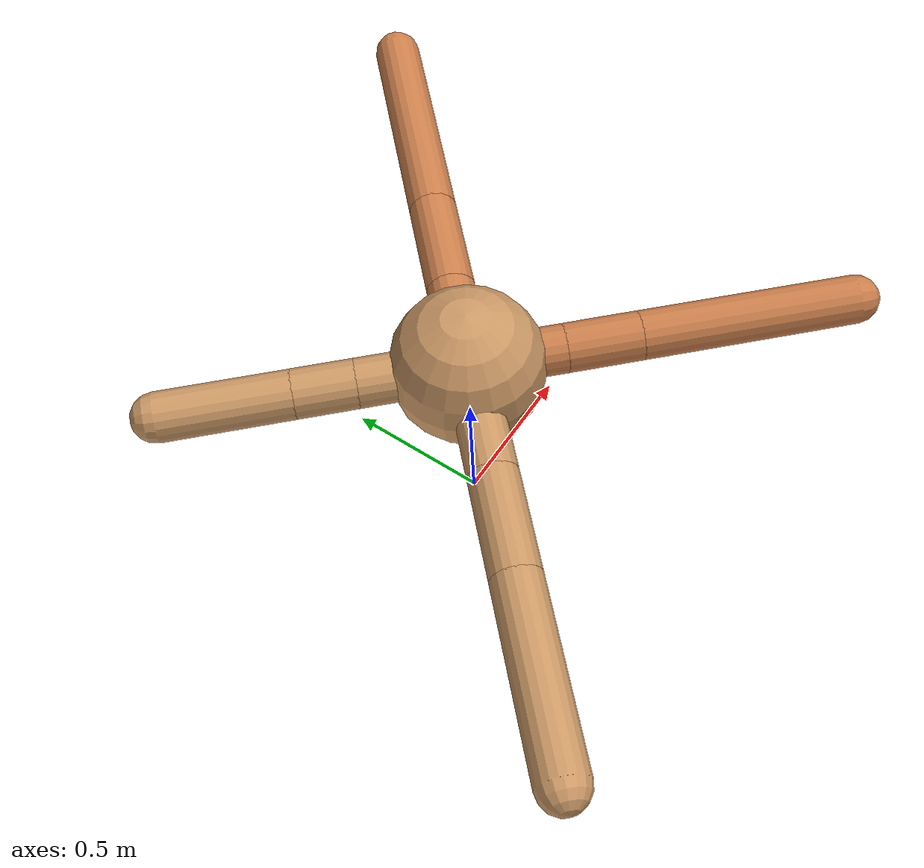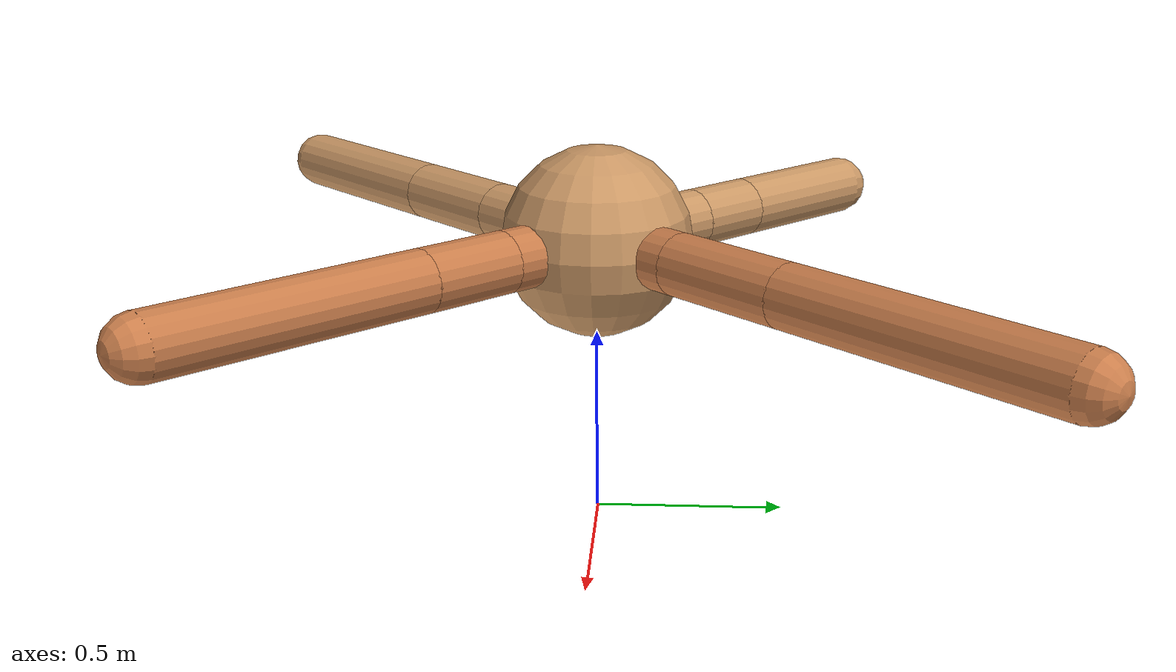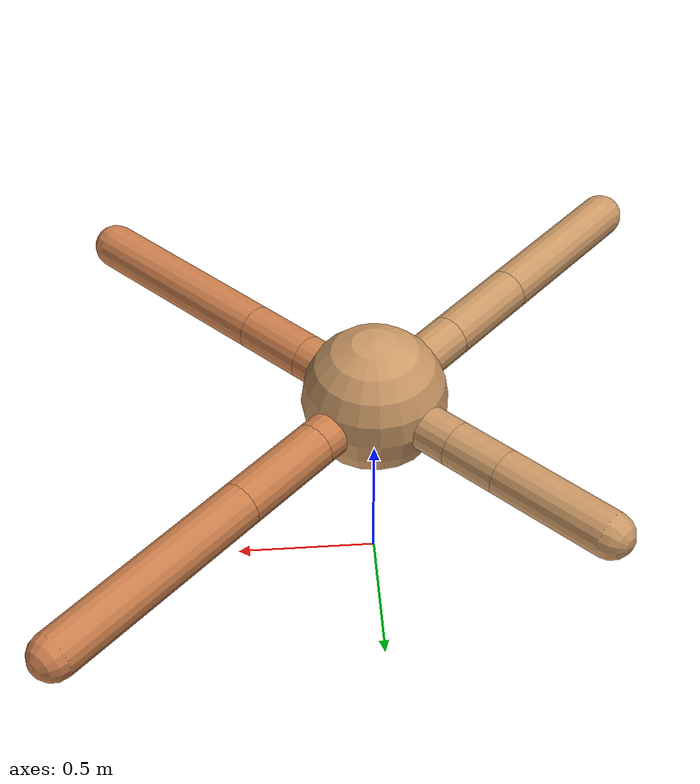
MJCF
<mujoco model="ant">
  <compiler angle="degree" coordinate="local" inertiafromgeom="true" />
  <option integrator="RK4" timestep="0.01" />
  <custom>
    <numeric data="0.0 0.0 0.55 1.0 0.0 0.0 0.0 0.0 1.0 0.0 -1.0 0.0 -1.0 0.0 1.0" name="init_qpos" />
  </custom>
  <default>
    <joint armature="1" damping="1" limited="true" />
    <geom conaffinity="0" condim="3" density="5.0" friction="1.5 0.1 0.1" margin="0.01" rgba="0.8 0.6 0.4 1" />
  </default>
  <worldbody>
    <body name="torso" pos="0 0 0.75">
      <geom name="torso_geom" pos="0 0 0" size="0.25" type="sphere" />

      <body name="front_left_leg" pos="0 0 0">
        <geom fromto="0.0 0.0 0.0 0.21511293316208835 0.21511293316208835 0.0" name="aux_1_geom" size="0.08" type="capsule" rgba=".8 .5 .3 1" />
        <body name="aux_1" pos="0.21511293316208835 0.21511293316208835 0.0">
          <joint axis="0 0 1" name="hip_1" pos="0.0 0.0 0.0" range="-40 40" type="hinge" />
          <geom fromto="0.0 0.0 0.0 0.24697506634563765 0.24697506634563765 0.0" name="left_leg_geom" size="0.08" type="capsule" rgba=".8 .5 .3 1" />
          <body pos="0.24697506634563765 0.24697506634563765 0.0" name="front_left_foot">
            <joint axis="-1 1 0" name="ankle_1" pos="0.0 0.0 0.0" range="30 100" type="hinge" />
            <geom fromto="0.0 0.0 0.0 0.5537741012371659 0.5537741012371659 0.0" name="left_ankle_geom" size="0.08" type="capsule" rgba=".8 .5 .3 1" />
          </body>
        </body>
      </body>
      <body name="front_right_leg" pos="0 0 0">
        <geom fromto="0.0 0.0 0.0 -0.24712444820036314 0.24712444820036314 0.0" name="aux_2_geom" size="0.08" type="capsule" />
        <body name="aux_2" pos="-0.24712444820036314 0.24712444820036314 0.0">
          <joint axis="0 0 1" name="hip_2" pos="0.0 0.0 0.0" range="-40 40" type="hinge" />
          <geom fromto="0.0 0.0 0.0 -0.13847660228017877 0.13847660228017877 0.0" name="right_leg_geom" size="0.08" type="capsule" />
          <body pos="-0.13847660228017877 0.13847660228017877 0.0" name="front_right_foot">
            <joint axis="1 1 0" name="ankle_2" pos="0.0 0.0 0.0" range="-100 -30" type="hinge" />
            <geom fromto="0.0 0.0 0.0 -0.29386936519088674 0.29386936519088674 0.0" name="right_ankle_geom" size="0.08" type="capsule" />
          </body>
        </body>
      </body>
      <body name="left_back_leg" pos="0 0 0">
        <geom fromto="0.0 0.0 0.0 -0.28606493655803894 -0.28606493655803894 0.0" name="aux_3_geom" size="0.08" type="capsule" />
        <body name="aux_3" pos="-0.28606493655803894 -0.28606493655803894 0.0">
          <joint axis="0 0 1" name="hip_3" pos="0.0 0.0 0.0" range="-40 40" type="hinge" />
          <geom fromto="0.0 0.0 0.0 -0.23919749383749986 -0.23919749383749986 0.0" name="back_leg_geom" size="0.08" type="capsule" />
          <body pos="-0.23919749383749986 -0.23919749383749986 0.0" name="left_back_foot">
            <joint axis="-1 1 0" name="ankle_3" pos="0.0 0.0 0.0" range="-100 -30" type="hinge" />
            <geom fromto="0.0 0.0 0.0 -0.4193753851598597 -0.4193753851598597 0.0" name="third_ankle_geom" size="0.08" type="capsule" />
          </body>
        </body>
      </body>
      <body name="right_back_leg" pos="0 0 0">
        <geom fromto="0.0 0.0 0.0 0.21820182671316554 -0.21820182671316554 0.0" name="aux_4_geom" size="0.08" type="capsule" rgba=".8 .5 .3 1" />
        <body name="aux_4" pos="0.21820182671316554 -0.21820182671316554 0.0">
          <joint axis="0 0 1" name="hip_4" pos="0.0 0.0 0.0" range="-40 40" type="hinge" />
          <geom fromto="0.0 0.0 0.0 0.17241316482976168 -0.17241316482976168 0.0" name="rightback_leg_geom" size="0.08" type="capsule" rgba=".8 .5 .3 1" />
          <body pos="0.17241316482976168 -0.17241316482976168 0.0" name="right_back_foot">
            <joint axis="1 1 0" name="ankle_4" pos="0.0 0.0 0.0" range="30 100" type="hinge" />
            <geom fromto="0.0 0.0 0.0 0.506460939984063 -0.506460939984063 0.0" name="fourth_ankle_geom" size="0.08" type="capsule" rgba=".8 .5 .3 1" />
          </body>
        </body>
      </body>
    </body>
  </worldbody>
  <actuator>
    <motor ctrllimited="true" ctrlrange="-1.0 1.0" joint="hip_4" gear="150" />
    <motor ctrllimited="true" ctrlrange="-1.0 1.0" joint="ankle_4" gear="150" />
    <motor ctrllimited="true" ctrlrange="-1.0 1.0" joint="hip_1" gear="150" />
    <motor ctrllimited="true" ctrlrange="-1.0 1.0" joint="ankle_1" gear="150" />
    <motor ctrllimited="true" ctrlrange="-1.0 1.0" joint="hip_2" gear="150" />
    <motor ctrllimited="true" ctrlrange="-1.0 1.0" joint="ankle_2" gear="150" />
    <motor ctrllimited="true" ctrlrange="-1.0 1.0" joint="hip_3" gear="150" />
    <motor ctrllimited="true" ctrlrange="-1.0 1.0" joint="ankle_3" gear="150" />
  </actuator>
</mujoco>
